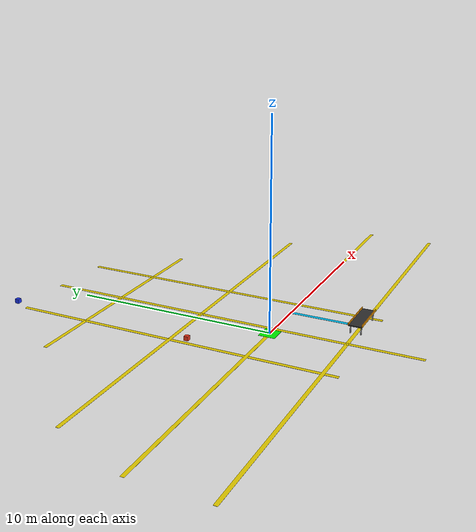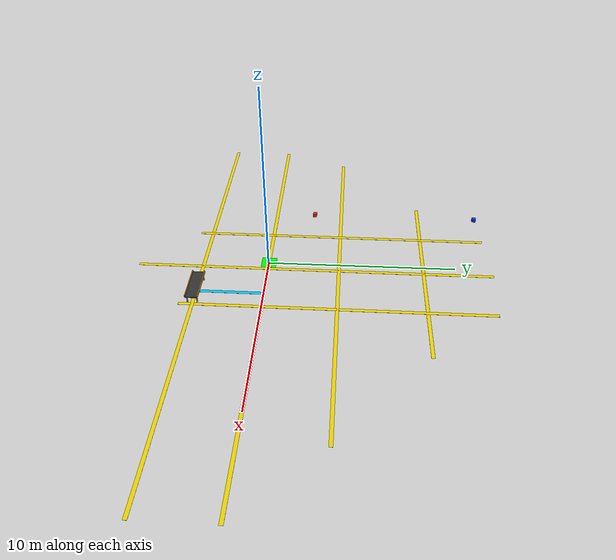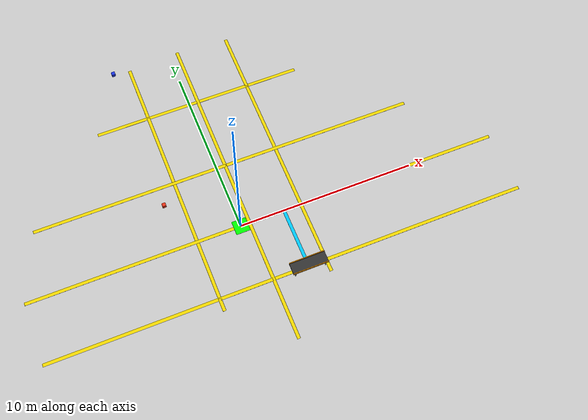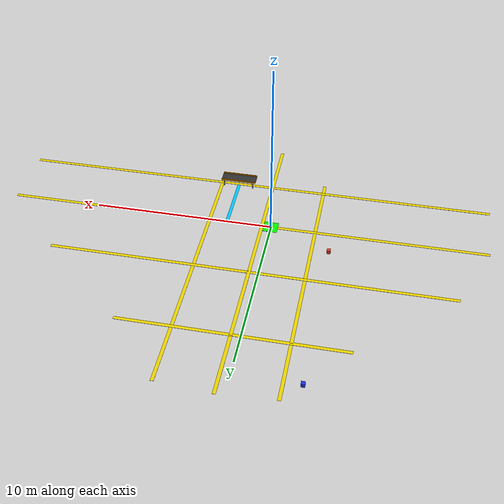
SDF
<sdf version="1.9">
 <world name="warehouse_world">
  <gravity>0 0 -9.8</gravity>
  <physics type="ode">
   <max_step_size>0.01</max_step_size>
   <real_time_factor>1</real_time_factor>
   <max_contacts>20</max_contacts>
  </physics>
  <plugin name="gz::sim::systems::Physics" filename="gz-sim-physics-system"/>
  <plugin name="gz::sim::systems::UserCommands" filename="gz-sim-user-commands-system"/>
  <plugin name="gz::sim::systems::SceneBroadcaster" filename="gz-sim-scene-broadcaster-system"/>
  <plugin name="gz::sim::systems::Imu" filename="gz-sim-imu-system"/>
  <plugin name="gz::sim::systems::Sensors" filename="gz-sim-sensors-system">
   <render_engine>ogre2</render_engine>
  </plugin>
  <plugin name="gz::sim::systems::Contact" filename="gz-sim-contact-system"/>
  <scene>
   <ambient>1 1 1 1</ambient>
   <background>0.3 0.7 0.9 1</background>
   <shadows>0</shadows>
   <grid>false</grid>
  </scene>
  <light type="directional" name="sun">
   <cast_shadows>0</cast_shadows>
   <pose>-5 -3 10 0 0 0</pose>
   <diffuse>1 1 1 1</diffuse>
   <specular>1 1 1 1</specular>
   <direction>0 0 -1</direction>
  </light>
  <model name="ground_plane">
   <static>true</static>
   <link name="link">
    <collision name="collision">
     <geometry><plane><normal>0.0 0.0 1</normal><size>1 1</size></plane></geometry>
    </collision>
   </link>
  </model>
  <model name="transport_box">
   <pose>-3.5 2.3 0.85 0 0 0</pose>
   <link name="box_link">
    <inertial>
     <mass>1.0</mass>
     <inertia><ixx>0.004</ixx><ixy>0</ixy><ixz>0</ixz><iyy>0.004</iyy><iyz>0</iyz><izz>0.004</izz></inertia>
    </inertial>
    <collision name="collision">
     <geometry><box><size>0.2 0.2 0.2</size></box></geometry>
     <surface><friction><ode><mu>1.0</mu><mu2>1.0</mu2></ode></friction></surface>
    </collision>
    <visual name="visual">
     <geometry><box><size>0.2 0.2 0.2</size></box></geometry>
     <material>
      <ambient>0.9 0.2 0.1 1</ambient>
      <diffuse>0.9 0.2 0.1 1</diffuse>
      <specular>0.3 0.3 0.3 1</specular>
     </material>
    </visual>
   </link>
  </model>
  <model name="transport_box_2">
   <pose>-3.5 11.3435 0.85 0 0 0</pose>
   <link name="box_link">
    <inertial>
     <mass>1.0</mass>
     <inertia><ixx>0.004</ixx><ixy>0</ixy><ixz>0</ixz><iyy>0.004</iyy><iyz>0</iyz><izz>0.004</izz></inertia>
    </inertial>
    <collision name="collision">
     <geometry><box><size>0.2 0.2 0.2</size></box></geometry>
     <surface><friction><ode><mu>1.0</mu><mu2>1.0</mu2></ode></friction></surface>
    </collision>
    <visual name="visual">
     <geometry><box><size>0.2 0.2 0.2</size></box></geometry>
     <material>
      <ambient>0.1 0.2 0.9 1</ambient>
      <diffuse>0.1 0.2 0.9 1</diffuse>
      <specular>0.3 0.3 0.3 1</specular>
     </material>
    </visual>
   </link>
  </model>
  <model name="conveyor_belt">
   <static>true</static>
   <pose>2.5 -3.5 0 0 0 0</pose>
   <link name="belt_surface">
    <pose>0 0 0.42 0 0 0</pose>
    <collision name="collision"><geometry><box><size>2.0 0.6 0.05</size></box></geometry></collision>
    <visual name="visual">
     <geometry><box><size>2.0 0.6 0.05</size></box></geometry>
     <material>
      <ambient>0.15 0.15 0.15 1</ambient>
      <diffuse>0.2 0.2 0.2 1</diffuse>
      <specular>0.4 0.4 0.4 1</specular>
     </material>
    </visual>
   </link>
   <link name="rail_left">
    <pose>0 0.32 0.47 0 0 0</pose>
    <collision name="collision"><geometry><box><size>2.0 0.04 0.1</size></box></geometry></collision>
    <visual name="visual">
     <geometry><box><size>2.0 0.04 0.1</size></box></geometry>
     <material><ambient>0.9 0.55 0.0 1</ambient><diffuse>0.9 0.55 0.0 1</diffuse></material>
    </visual>
   </link>
   <link name="rail_right">
    <pose>0 -0.32 0.47 0 0 0</pose>
    <collision name="collision"><geometry><box><size>2.0 0.04 0.1</size></box></geometry></collision>
    <visual name="visual">
     <geometry><box><size>2.0 0.04 0.1</size></box></geometry>
     <material><ambient>0.9 0.55 0.0 1</ambient><diffuse>0.9 0.55 0.0 1</diffuse></material>
    </visual>
   </link>
   <link name="leg_left_near">
    <pose>0.85 0.25 0.21 0 0 0</pose>
    <collision name="collision"><geometry><box><size>0.05 0.05 0.42</size></box></geometry></collision>
    <visual name="visual">
     <geometry><box><size>0.05 0.05 0.42</size></box></geometry>
     <material><ambient>0.6 0.6 0.6 1</ambient><diffuse>0.6 0.6 0.6 1</diffuse></material>
    </visual>
   </link>
   <link name="leg_right_near">
    <pose>0.85 -0.25 0.21 0 0 0</pose>
    <collision name="collision"><geometry><box><size>0.05 0.05 0.42</size></box></geometry></collision>
    <visual name="visual">
     <geometry><box><size>0.05 0.05 0.42</size></box></geometry>
     <material><ambient>0.6 0.6 0.6 1</ambient><diffuse>0.6 0.6 0.6 1</diffuse></material>
    </visual>
   </link>
   <link name="leg_left_far">
    <pose>-0.85 0.25 0.21 0 0 0</pose>
    <collision name="collision"><geometry><box><size>0.05 0.05 0.42</size></box></geometry></collision>
    <visual name="visual">
     <geometry><box><size>0.05 0.05 0.42</size></box></geometry>
     <material><ambient>0.6 0.6 0.6 1</ambient><diffuse>0.6 0.6 0.6 1</diffuse></material>
    </visual>
   </link>
   <link name="leg_right_far">
    <pose>-0.85 -0.25 0.21 0 0 0</pose>
    <collision name="collision"><geometry><box><size>0.05 0.05 0.42</size></box></geometry></collision>
    <visual name="visual">
     <geometry><box><size>0.05 0.05 0.42</size></box></geometry>
     <material><ambient>0.6 0.6 0.6 1</ambient><diffuse>0.6 0.6 0.6 1</diffuse></material>
    </visual>
   </link>
  </model>
  <model name="lane_h_main">
   <static>true</static>
   <pose>1.5 0.0 0.002 0 0 0</pose>
   <link name="l">
    <visual name="v">
     <geometry><box><size>27.0 0.18 0.005</size></box></geometry>
     <material><ambient>0.95 0.85 0.0 1</ambient><diffuse>0.95 0.85 0.0 1</diffuse></material>
    </visual>
   </link>
  </model>
  <model name="lane_h_south">
   <static>true</static>
   <pose>1.5 -3.5 0.002 0 0 0</pose>
   <link name="l">
    <visual name="v">
     <geometry><box><size>27.0 0.18 0.005</size></box></geometry>
     <material><ambient>0.95 0.85 0.0 1</ambient><diffuse>0.95 0.85 0.0 1</diffuse></material>
    </visual>
   </link>
  </model>
  <model name="lane_h_north">
   <static>true</static>
   <pose>0.5 3.8 0.002 0 0 0</pose>
   <link name="l">
    <visual name="v">
     <geometry><box><size>22.0 0.18 0.005</size></box></geometry>
     <material><ambient>0.95 0.85 0.0 1</ambient><diffuse>0.95 0.85 0.0 1</diffuse></material>
    </visual>
   </link>
  </model>
  <model name="lane_v_center">
   <static>true</static>
   <pose>0.5 2.5 0.002 0 0 0</pose>
   <link name="l">
    <visual name="v">
     <geometry><box><size>0.18 19.0 0.005</size></box></geometry>
     <material><ambient>0.95 0.85 0.0 1</ambient><diffuse>0.95 0.85 0.0 1</diffuse></material>
    </visual>
   </link>
  </model>
  <model name="lane_v_left">
   <static>true</static>
   <pose>-2.5 3.8 0.002 0 0 0</pose>
   <link name="l">
    <visual name="v">
     <geometry><box><size>0.18 16.0 0.005</size></box></geometry>
     <material><ambient>0.95 0.85 0.0 1</ambient><diffuse>0.95 0.85 0.0 1</diffuse></material>
    </visual>
   </link>
  </model>
  <model name="lane_v_right">
   <static>true</static>
   <pose>3.5 3.8 0.002 0 0 0</pose>
   <link name="l">
    <visual name="v">
     <geometry><box><size>0.18 16.0 0.005</size></box></geometry>
     <material><ambient>0.95 0.85 0.0 1</ambient><diffuse>0.95 0.85 0.0 1</diffuse></material>
    </visual>
   </link>
  </model>
  <model name="lane_h_top">
   <static>true</static>
   <pose>0.5 8.3 0.002 0 0 0</pose>
   <link name="l">
    <visual name="v">
     <geometry><box><size>12.0 0.18 0.005</size></box></geometry>
     <material><ambient>0.95 0.85 0.0 1</ambient><diffuse>0.95 0.85 0.0 1</diffuse></material>
    </visual>
   </link>
  </model>
  <model name="lane_conveyor_approach">
   <static>true</static>
   <pose>2.5 -1.75 0.002 0 0 0</pose>
   <link name="l">
    <visual name="v">
     <geometry><box><size>0.18 3.5 0.005</size></box></geometry>
     <material><ambient>0.0 0.8 1.0 1</ambient><diffuse>0.0 0.8 1.0 1</diffuse></material>
    </visual>
   </link>
  </model>
  <model name="start_zone">
   <static>true</static>
   <pose>0.0 0.0 0.003 0 0 0</pose>
   <link name="l">
    <visual name="v">
     <geometry><box><size>0.8 0.8 0.005</size></box></geometry>
     <material><ambient>0.0 1.0 0.0 1</ambient><diffuse>0.0 1.0 0.0 1</diffuse></material>
    </visual>
   </link>
  </model>
 </world>
</sdf>
